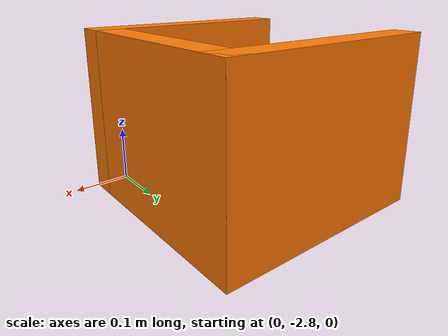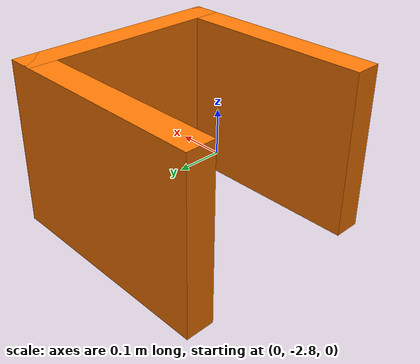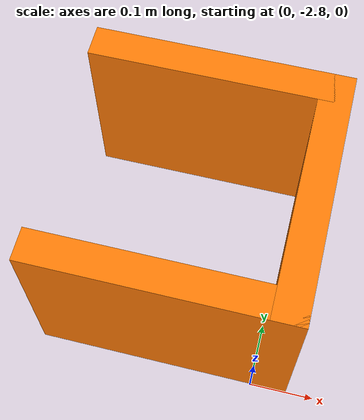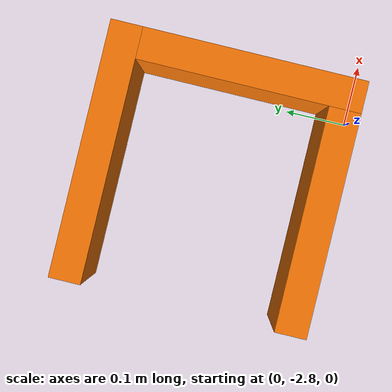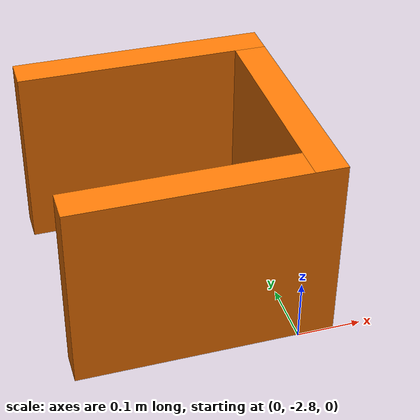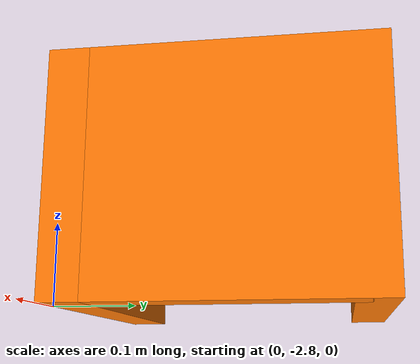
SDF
<?xml version='1.0'?>
<sdf version='1.6'>
  <model name='ParkingPlace'>
    <pose frame=''>-0.143 -2.599 0 0 -0 0</pose>
    <link name='Wall_4'>
      <collision name='Wall_4_Collision'>
        <geometry>
          <box>
            <size>0.399995 0.05 0.3</size>
          </box>
        </geometry>
        <pose frame=''>0 0 0.15 0 -0 0</pose>
      </collision>
      <visual name='Wall_4_Visual'>
        <pose frame=''>0 0 0.15 0 -0 0</pose>
        <geometry>
          <box>
            <size>0.399995 0.05 0.3</size>
          </box>
        </geometry>
        <material>
          <script>
            <uri>file://media/materials/scripts/gazebo.material</uri>
            <name>Gazebo/Grey</name>
          </script>
          <ambient>0.996078 0.47451 0.0196078 1</ambient>
        </material>
      </visual>
      <pose frame=''>0 0.175 0 0 -0 0</pose>
    </link>
    <link name='Wall_5'>
      <collision name='Wall_5_Collision'>
        <geometry>
          <box>
            <size>0.399958 0.05 0.3</size>
          </box>
        </geometry>
        <pose frame=''>0 0 0.15 0 -0 0</pose>
      </collision>
      <visual name='Wall_5_Visual'>
        <pose frame=''>0 0 0.15 0 -0 0</pose>
        <geometry>
          <box>
            <size>0.399958 0.05 0.3</size>
          </box>
        </geometry>
        <material>
          <script>
            <uri>file://media/materials/scripts/gazebo.material</uri>
            <name>Gazebo/Grey</name>
          </script>
          <ambient>0.996078 0.47451 0.0196078 1</ambient>
        </material>
      </visual>
      <pose frame=''>0.175 0 0 0 0 -1.5708</pose>
    </link>
    <link name='Wall_6'>
      <collision name='Wall_6_Collision'>
        <geometry>
          <box>
            <size>0.400005 0.05 0.3</size>
          </box>
        </geometry>
        <pose frame=''>0 0 0.15 0 -0 0</pose>
      </collision>
      <visual name='Wall_6_Visual'>
        <pose frame=''>0 0 0.15 0 -0 0</pose>
        <geometry>
          <box>
            <size>0.400005 0.05 0.3</size>
          </box>
        </geometry>
        <material>
          <script>
            <uri>file://media/materials/scripts/gazebo.material</uri>
            <name>Gazebo/Grey</name>
          </script>
          <ambient>0.996078 0.47451 0.0196078 1</ambient>
        </material>
      </visual>
      <pose frame=''>0 -0.175 0 0 -0 3.14159</pose>
    </link>
    <static>1</static>
  </model>
</sdf>
